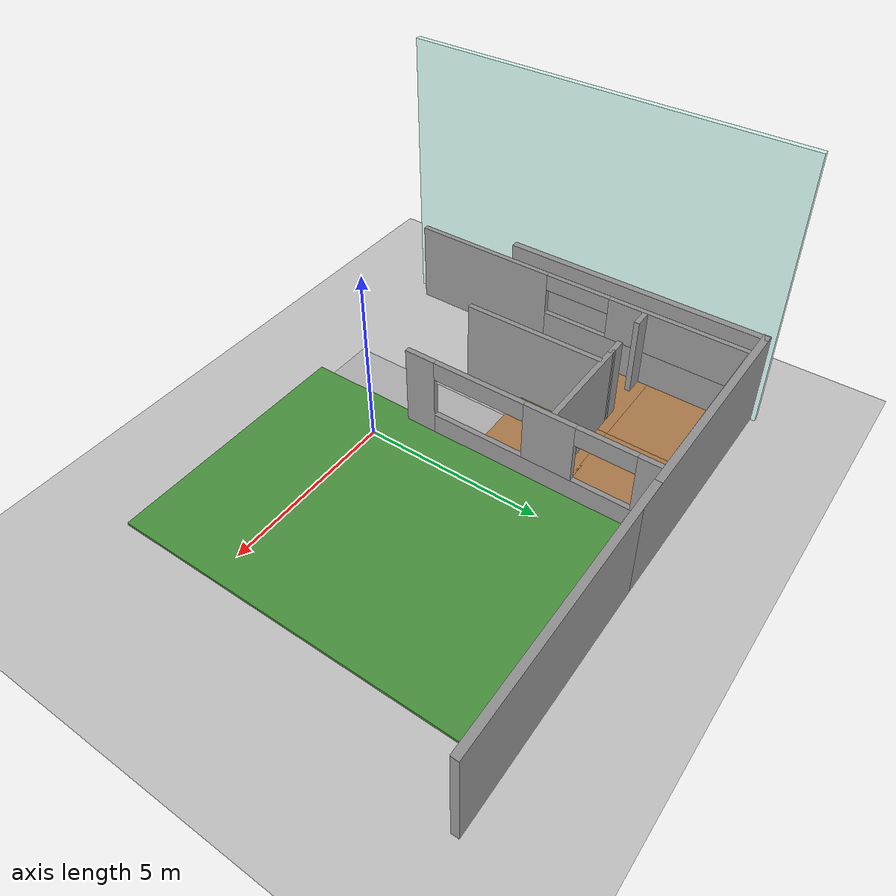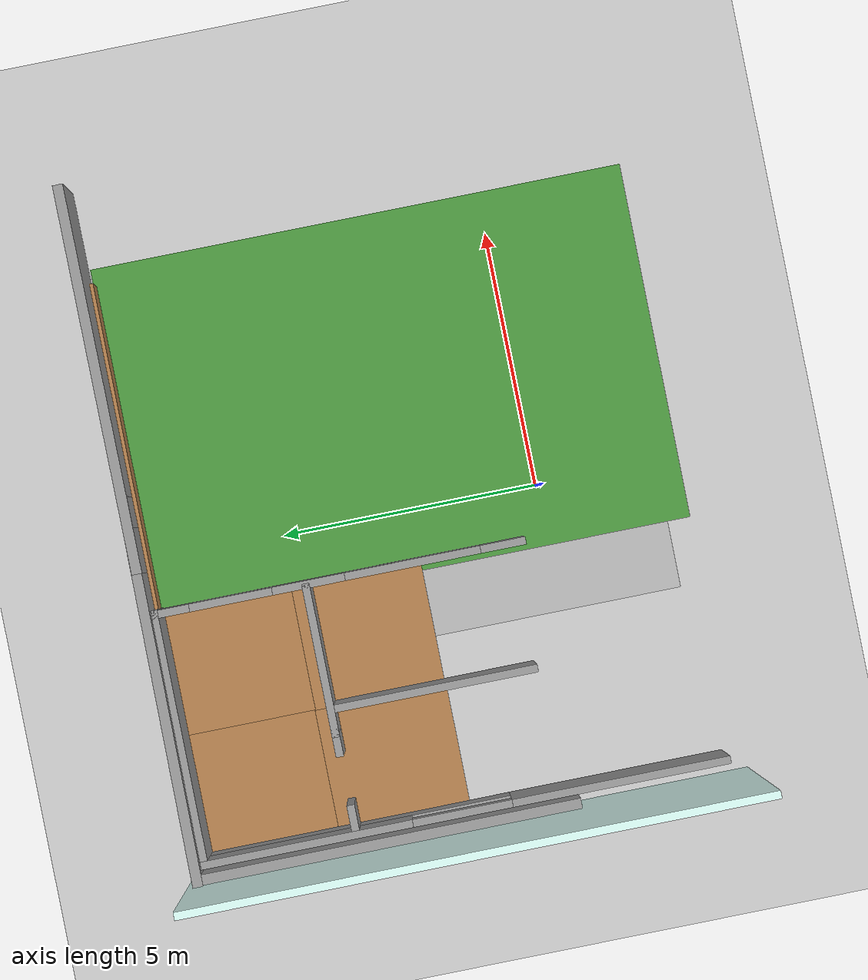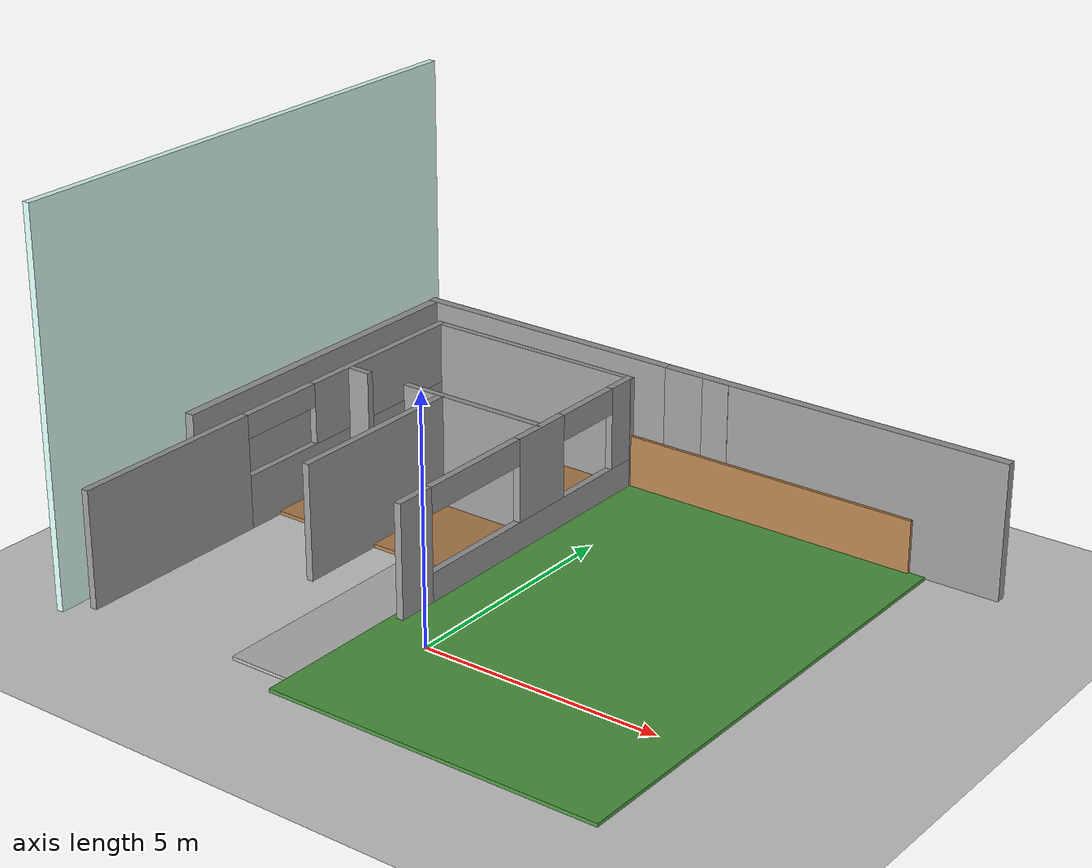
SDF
<sdf version="1.6">
 <world name="default">
  <model name="mud_box">
   <static>1</static>
   <link name="link">
    <collision name="collision"><geometry><box><size>8 10 0.2</size></box></geometry></collision>
    <visual name="visual_1">
     <pose>-2 2.5 0 0 -0 0</pose>
     <cast_shadows>0</cast_shadows>
     <geometry><box><size>4 5 0.2</size></box></geometry>
     <material>
      <script>
       <uri>model://mud_box/materials/scripts</uri>
       <uri>model://mud_box/materials/textures</uri>
       <name>vrc/mud</name>
      </script>
     </material>
    </visual>
    <visual name="visual_2">
     <pose>2 2.5 0 0 -0 0</pose>
     <cast_shadows>0</cast_shadows>
     <geometry><box><size>4 5 0.2</size></box></geometry>
     <material>
      <script>
       <uri>model://mud_box/materials/scripts</uri>
       <uri>model://mud_box/materials/textures</uri>
       <name>vrc/mud</name>
      </script>
     </material>
    </visual>
    <visual name="visual_3">
     <pose>2 -2.5 0 0 -0 0</pose>
     <cast_shadows>0</cast_shadows>
     <geometry><box><size>4 5 0.2</size></box></geometry>
     <material>
      <script>
       <uri>model://mud_box/materials/scripts</uri>
       <uri>model://mud_box/materials/textures</uri>
       <name>vrc/mud</name>
      </script>
     </material>
    </visual>
    <visual name="visual_4">
     <pose>-2 -2.5 0 0 -0 0</pose>
     <cast_shadows>0</cast_shadows>
     <geometry><box><size>4 5 0.2</size></box></geometry>
     <material>
      <script>
       <uri>model://mud_box/materials/scripts</uri>
       <uri>model://mud_box/materials/textures</uri>
       <name>vrc/mud</name>
      </script>
     </material>
    </visual>
   </link>
   <pose>1.51756 2.62532 -0.053989 0 -0 0</pose>
  </model>
  <model name="grey_wall_clone_0_clone">
   <static>1</static>
   <link name="link">
    <pose>0 0 1.4 0 -0 0</pose>
    <collision name="collision"><geometry><box><size>7.5 0.2 2.8</size></box></geometry></collision>
    <visual name="visual">
     <cast_shadows>0</cast_shadows>
     <geometry><box><size>7.5 0.2 2.8</size></box></geometry>
     <material>
      <script>
       <uri>model://grey_wall/materials/scripts</uri>
       <uri>model://grey_wall/materials/textures</uri>
       <name>vrc/grey_wall</name>
      </script>
     </material>
    </visual>
   </link>
   <pose>3.58891 7.79807 -0 0 0 -3.13873</pose>
  </model>
  <model name="grey_wall_clone_0_clone_0">
   <static>1</static>
   <link name="link">
    <pose>0 0 1.4 0 -0 0</pose>
    <collision name="collision"><geometry><box><size>7.5 0.2 2.8</size></box></geometry></collision>
    <visual name="visual">
     <cast_shadows>0</cast_shadows>
     <geometry><box><size>7.5 0.2 2.8</size></box></geometry>
     <material>
      <script>
       <uri>model://grey_wall/materials/scripts</uri>
       <uri>model://grey_wall/materials/textures</uri>
       <name>vrc/grey_wall</name>
      </script>
     </material>
    </visual>
   </link>
   <pose>-2.42988 7.80474 0 0 -0 3.13686</pose>
  </model>
  <model name="grey_wall_clone_0_clone_0_clone_2">
   <static>1</static>
   <link name="link">
    <pose>0 0 1.4 0 -0 0</pose>
    <collision name="collision"><geometry><box><size>7.5 0.2 2.8</size></box></geometry></collision>
    <visual name="visual">
     <cast_shadows>0</cast_shadows>
     <geometry><box><size>7.5 0.2 2.8</size></box></geometry>
     <material>
      <script>
       <uri>model://grey_wall/materials/scripts</uri>
       <uri>model://grey_wall/materials/textures</uri>
       <name>vrc/grey_wall</name>
      </script>
     </material>
    </visual>
   </link>
   <pose>-6.05351 4.16462 0 0 -0 1.57226</pose>
  </model>
  <model name="grass">
   <link name="Wall_4">
    <pose>0 0 0 0 -0 1.5708</pose>
    <inertial>
     <mass>1</mass>
     <inertia><ixx>1</ixx><ixy>0</ixy><ixz>0</ixz><iyy>1</iyy><iyz>0</iyz><izz>1</izz></inertia>
    </inertial>
    <visual name="Wall_4_Visual">
     <pose>0 0 0.25 0 -0 0</pose>
     <geometry><box><size>10.5 7 0.5</size></box></geometry>
     <material>
      <script><uri>file://media/materials/scripts/gazebo.material</uri><name>Gazebo/Grass</name></script>
      <ambient>0.435 0.796 0.675 1</ambient>
      <shader type="vertex"><normal_map>__default__</normal_map></shader>
      <diffuse>0.7 0.7 0.7 1</diffuse>
      <specular>0.01 0.01 0.01 1</specular>
      <emissive>0 0 0 1</emissive>
     </material>
     <meta><layer>0</layer></meta>
    </visual>
    <collision name="collision_0">
     <pose>10.95 6.2 0.5 0 -0 0</pose>
     <geometry><box><size>10.95 6.2 0.5</size></box></geometry>
     <surface>
      <friction>
       <ode><mu>1</mu><mu2>1</mu2><fdir1>0 0 0</fdir1><slip1>0</slip1><slip2>0</slip2></ode>
       <torsional>
        <coefficient>1</coefficient>
        <patch_radius>0</patch_radius>
        <surface_radius>0</surface_radius>
        <use_patch_radius>1</use_patch_radius>
        <ode><slip>0</slip></ode>
       </torsional>
      </friction>
      <bounce><restitution_coefficient>0</restitution_coefficient><threshold>1e+06</threshold></bounce>
      <contact>
       <collide_without_contact>0</collide_without_contact>
       <collide_without_contact_bitmask>1</collide_without_contact_bitmask>
       <collide_bitmask>1</collide_bitmask>
       <ode>
        <soft_cfm>0</soft_cfm>
        <soft_erp>0.2</soft_erp>
        <kp>1e+13</kp>
        <kd>1</kd>
        <max_vel>0.01</max_vel>
        <min_depth>0</min_depth>
       </ode>
       <bullet>
        <split_impulse>1</split_impulse>
        <split_impulse_penetration_threshold>-0.01</split_impulse_penetration_threshold>
        <soft_cfm>0</soft_cfm>
        <soft_erp>0.2</soft_erp>
        <kp>1e+13</kp>
        <kd>1</kd>
       </bullet>
      </contact>
     </surface>
    </collision>
   </link>
   <static>1</static>
   <pose>2.32059 2.42329 -0.447772 0 0 -0.00069</pose>
  </model>
  <model name="world_frame">
   <link name="Wall_136">
    <pose>-18.5517 1.54493 -0.100255 0 -0 1.5708</pose>
    <visual name="Wall_136_Visual_4">
     <pose>-1.43693 0 2.225 0 -0 0</pose>
     <geometry><box><size>2.62457 0.15 0.55</size></box></geometry>
     <material>
      <script><uri>file://media/materials/scripts/gazebo.material</uri><name>Gazebo/Grey</name></script>
      <ambient>1 1 1 1</ambient>
      <shader type="pixel"/>
      <diffuse>0.7 0.7 0.7 1</diffuse>
      <specular>0.01 0.01 0.01 1</specular>
      <emissive>0 0 0 1</emissive>
     </material>
     <meta><layer>0</layer></meta>
    </visual>
    <visual name="Wall_136_Visual_3">
     <pose>3.25362 0 1.625 0 -0 0</pose>
     <geometry><box><size>0.742767 0.15 1.75</size></box></geometry>
     <material>
      <script><uri>file://media/materials/scripts/gazebo.material</uri><name>Gazebo/Grey</name></script>
      <ambient>1 1 1 1</ambient>
      <shader type="pixel"/>
      <diffuse>0.7 0.7 0.7 1</diffuse>
      <specular>0.01 0.01 0.01 1</specular>
      <emissive>0 0 0 1</emissive>
     </material>
     <meta><layer>0</layer></meta>
    </visual>
    <visual name="Wall_136_Visual_5">
     <pose>2.08223 0 2.225 0 -0 0</pose>
     <geometry><box><size>1.6 0.15 0.55</size></box></geometry>
     <material>
      <script><uri>file://media/materials/scripts/gazebo.material</uri><name>Gazebo/Grey</name></script>
      <ambient>1 1 1 1</ambient>
      <shader type="pixel"/>
      <diffuse>0.7 0.7 0.7 1</diffuse>
      <specular>0.01 0.01 0.01 1</specular>
      <emissive>0 0 0 1</emissive>
     </material>
     <meta><layer>0</layer></meta>
    </visual>
    <visual name="Wall_136_Visual_0">
     <pose>-3.1871 0 1.25 0 -0 0</pose>
     <geometry><box><size>0.875792 0.15 2.5</size></box></geometry>
     <material>
      <script><uri>file://media/materials/scripts/gazebo.material</uri><name>Gazebo/Grey</name></script>
      <ambient>1 1 1 1</ambient>
      <shader type="pixel"/>
      <diffuse>0.7 0.7 0.7 1</diffuse>
      <specular>0.01 0.01 0.01 1</specular>
      <emissive>0 0 0 1</emissive>
     </material>
     <meta><layer>0</layer></meta>
    </visual>
    <visual name="Wall_136_Visual_1">
     <pose>0.437896 0 0.375 0 -0 0</pose>
     <geometry><box><size>6.37421 0.15 0.75</size></box></geometry>
     <material>
      <script><uri>file://media/materials/scripts/gazebo.material</uri><name>Gazebo/Grey</name></script>
      <ambient>1 1 1 1</ambient>
      <shader type="pixel"/>
      <diffuse>0.7 0.7 0.7 1</diffuse>
      <specular>0.01 0.01 0.01 1</specular>
      <emissive>0 0 0 1</emissive>
     </material>
     <meta><layer>0</layer></meta>
    </visual>
    <visual name="Wall_136_Visual_2">
     <pose>0.578795 0 1.625 0 -0 0</pose>
     <geometry><box><size>1.40688 0.15 1.75</size></box></geometry>
     <material>
      <script><uri>file://media/materials/scripts/gazebo.material</uri><name>Gazebo/Grey</name></script>
      <ambient>1 1 1 1</ambient>
      <shader type="pixel"/>
      <diffuse>0.7 0.7 0.7 1</diffuse>
      <specular>0.01 0.01 0.01 1</specular>
      <emissive>0 0 0 1</emissive>
     </material>
     <meta><layer>0</layer></meta>
    </visual>
    <collision name="Wall_136_Collision_0">
     <pose>-3.1871 0 1.25 0 -0 0</pose>
     <geometry><box><size>0.875792 0.15 2.5</size></box></geometry>
     <surface>
      <friction>
       <ode><mu>1</mu><mu2>1</mu2><fdir1>0 0 0</fdir1><slip1>0</slip1><slip2>0</slip2></ode>
       <torsional>
        <coefficient>1</coefficient>
        <patch_radius>0</patch_radius>
        <surface_radius>0</surface_radius>
        <use_patch_radius>1</use_patch_radius>
        <ode><slip>0</slip></ode>
       </torsional>
      </friction>
      <bounce><restitution_coefficient>0</restitution_coefficient><threshold>1e+06</threshold></bounce>
      <contact>
       <collide_without_contact>0</collide_without_contact>
       <collide_without_contact_bitmask>1</collide_without_contact_bitmask>
       <collide_bitmask>1</collide_bitmask>
       <ode>
        <soft_cfm>0</soft_cfm>
        <soft_erp>0.2</soft_erp>
        <kp>1e+13</kp>
        <kd>1</kd>
        <max_vel>0.01</max_vel>
        <min_depth>0</min_depth>
       </ode>
       <bullet>
        <split_impulse>1</split_impulse>
        <split_impulse_penetration_threshold>-0.01</split_impulse_penetration_threshold>
        <soft_cfm>0</soft_cfm>
        <soft_erp>0.2</soft_erp>
        <kp>1e+13</kp>
        <kd>1</kd>
       </bullet>
      </contact>
     </surface>
    </collision>
    <collision name="Wall_136_Collision_5">
     <pose>2.08223 0 2.225 0 -0 0</pose>
     <geometry><box><size>1.6 0.15 0.55</size></box></geometry>
     <surface>
      <friction>
       <ode><mu>1</mu><mu2>1</mu2><fdir1>0 0 0</fdir1><slip1>0</slip1><slip2>0</slip2></ode>
       <torsional>
        <coefficient>1</coefficient>
        <patch_radius>0</patch_radius>
        <surface_radius>0</surface_radius>
        <use_patch_radius>1</use_patch_radius>
        <ode><slip>0</slip></ode>
       </torsional>
      </friction>
      <bounce><restitution_coefficient>0</restitution_coefficient><threshold>1e+06</threshold></bounce>
      <contact>
       <collide_without_contact>0</collide_without_contact>
       <collide_without_contact_bitmask>1</collide_without_contact_bitmask>
       <collide_bitmask>1</collide_bitmask>
       <ode>
        <soft_cfm>0</soft_cfm>
        <soft_erp>0.2</soft_erp>
        <kp>1e+13</kp>
        <kd>1</kd>
        <max_vel>0.01</max_vel>
        <min_depth>0</min_depth>
       </ode>
       <bullet>
        <split_impulse>1</split_impulse>
        <split_impulse_penetration_threshold>-0.01</split_impulse_penetration_threshold>
        <soft_cfm>0</soft_cfm>
        <soft_erp>0.2</soft_erp>
        <kp>1e+13</kp>
        <kd>1</kd>
       </bullet>
      </contact>
     </surface>
    </collision>
    <collision name="Wall_136_Collision_1">
     <pose>0.437896 0 0.375 0 -0 0</pose>
     <geometry><box><size>6.37421 0.15 0.75</size></box></geometry>
     <surface>
      <friction>
       <ode><mu>1</mu><mu2>1</mu2><fdir1>0 0 0</fdir1><slip1>0</slip1><slip2>0</slip2></ode>
       <torsional>
        <coefficient>1</coefficient>
        <patch_radius>0</patch_radius>
        <surface_radius>0</surface_radius>
        <use_patch_radius>1</use_patch_radius>
        <ode><slip>0</slip></ode>
       </torsional>
      </friction>
      <bounce><restitution_coefficient>0</restitution_coefficient><threshold>1e+06</threshold></bounce>
      <contact>
       <collide_without_contact>0</collide_without_contact>
       <collide_without_contact_bitmask>1</collide_without_contact_bitmask>
       <collide_bitmask>1</collide_bitmask>
       <ode>
        <soft_cfm>0</soft_cfm>
        <soft_erp>0.2</soft_erp>
        <kp>1e+13</kp>
        <kd>1</kd>
        <max_vel>0.01</max_vel>
        <min_depth>0</min_depth>
       </ode>
       <bullet>
        <split_impulse>1</split_impulse>
        <split_impulse_penetration_threshold>-0.01</split_impulse_penetration_threshold>
        <soft_cfm>0</soft_cfm>
        <soft_erp>0.2</soft_erp>
        <kp>1e+13</kp>
        <kd>1</kd>
       </bullet>
      </contact>
     </surface>
    </collision>
    <collision name="Wall_136_Collision_2">
     <pose>0.578795 0 1.625 0 -0 0</pose>
     <geometry><box><size>1.40688 0.15 1.75</size></box></geometry>
     <surface>
      <friction>
       <ode><mu>1</mu><mu2>1</mu2><fdir1>0 0 0</fdir1><slip1>0</slip1><slip2>0</slip2></ode>
       <torsional>
        <coefficient>1</coefficient>
        <patch_radius>0</patch_radius>
        <surface_radius>0</surface_radius>
        <use_patch_radius>1</use_patch_radius>
        <ode><slip>0</slip></ode>
       </torsional>
      </friction>
      <bounce><restitution_coefficient>0</restitution_coefficient><threshold>1e+06</threshold></bounce>
      <contact>
       <collide_without_contact>0</collide_without_contact>
       <collide_without_contact_bitmask>1</collide_without_contact_bitmask>
       <collide_bitmask>1</collide_bitmask>
       <ode>
        <soft_cfm>0</soft_cfm>
        <soft_erp>0.2</soft_erp>
        <kp>1e+13</kp>
        <kd>1</kd>
        <max_vel>0.01</max_vel>
        <min_depth>0</min_depth>
       </ode>
       <bullet>
        <split_impulse>1</split_impulse>
        <split_impulse_penetration_threshold>-0.01</split_impulse_penetration_threshold>
        <soft_cfm>0</soft_cfm>
        <soft_erp>0.2</soft_erp>
        <kp>1e+13</kp>
        <kd>1</kd>
       </bullet>
      </contact>
     </surface>
    </collision>
    <collision name="Wall_136_Collision_4">
     <pose>-1.43693 0 2.225 0 -0 0</pose>
     <geometry><box><size>2.62457 0.15 0.55</size></box></geometry>
     <surface>
      <friction>
       <ode><mu>1</mu><mu2>1</mu2><fdir1>0 0 0</fdir1><slip1>0</slip1><slip2>0</slip2></ode>
       <torsional>
        <coefficient>1</coefficient>
        <patch_radius>0</patch_radius>
        <surface_radius>0</surface_radius>
        <use_patch_radius>1</use_patch_radius>
        <ode><slip>0</slip></ode>
       </torsional>
      </friction>
      <bounce><restitution_coefficient>0</restitution_coefficient><threshold>1e+06</threshold></bounce>
      <contact>
       <collide_without_contact>0</collide_without_contact>
       <collide_without_contact_bitmask>1</collide_without_contact_bitmask>
       <collide_bitmask>1</collide_bitmask>
       <ode>
        <soft_cfm>0</soft_cfm>
        <soft_erp>0.2</soft_erp>
        <kp>1e+13</kp>
        <kd>1</kd>
        <max_vel>0.01</max_vel>
        <min_depth>0</min_depth>
       </ode>
       <bullet>
        <split_impulse>1</split_impulse>
        <split_impulse_penetration_threshold>-0.01</split_impulse_penetration_threshold>
        <soft_cfm>0</soft_cfm>
        <soft_erp>0.2</soft_erp>
        <kp>1e+13</kp>
        <kd>1</kd>
       </bullet>
      </contact>
     </surface>
    </collision>
    <collision name="Wall_136_Collision_3">
     <pose>3.25362 0 1.625 0 -0 0</pose>
     <geometry><box><size>0.742767 0.15 1.75</size></box></geometry>
     <surface>
      <friction>
       <ode><mu>1</mu><mu2>1</mu2><fdir1>0 0 0</fdir1><slip1>0</slip1><slip2>0</slip2></ode>
       <torsional>
        <coefficient>1</coefficient>
        <patch_radius>0</patch_radius>
        <surface_radius>0</surface_radius>
        <use_patch_radius>1</use_patch_radius>
        <ode><slip>0</slip></ode>
       </torsional>
      </friction>
      <bounce><restitution_coefficient>0</restitution_coefficient><threshold>1e+06</threshold></bounce>
      <contact>
       <collide_without_contact>0</collide_without_contact>
       <collide_without_contact_bitmask>1</collide_without_contact_bitmask>
       <collide_bitmask>1</collide_bitmask>
       <ode>
        <soft_cfm>0</soft_cfm>
        <soft_erp>0.2</soft_erp>
        <kp>1e+13</kp>
        <kd>1</kd>
        <max_vel>0.01</max_vel>
        <min_depth>0</min_depth>
       </ode>
       <bullet>
        <split_impulse>1</split_impulse>
        <split_impulse_penetration_threshold>-0.01</split_impulse_penetration_threshold>
        <soft_cfm>0</soft_cfm>
        <soft_erp>0.2</soft_erp>
        <kp>1e+13</kp>
        <kd>1</kd>
       </bullet>
      </contact>
     </surface>
    </collision>
   </link>
   <link name="Wall_140">
    <pose>-23.3896 0.057 -0.100255 0 -0 1.5708</pose>
    <visual name="Wall_140_Visual_3">
     <pose>0.054585 0 2.25 0 -0 0</pose>
     <geometry><box><size>1.92702 0.15 0.5</size></box></geometry>
     <material>
      <script><uri>file://media/materials/scripts/gazebo.material</uri><name>Gazebo/Grey</name></script>
      <ambient>1 1 1 1</ambient>
      <shader type="pixel"/>
      <diffuse>0.7 0.7 0.7 1</diffuse>
      <specular>0.01 0.01 0.01 1</specular>
      <emissive>0 0 0 1</emissive>
     </material>
     <meta><layer>0</layer></meta>
    </visual>
    <visual name="Wall_140_Visual_2">
     <pose>3.07155 0 1.85 0 -0 0</pose>
     <geometry><box><size>4.1069 0.15 1.3</size></box></geometry>
     <material>
      <script><uri>file://media/materials/scripts/gazebo.material</uri><name>Gazebo/Grey</name></script>
      <ambient>1 1 1 1</ambient>
      <shader type="pixel"/>
      <diffuse>0.7 0.7 0.7 1</diffuse>
      <specular>0.01 0.01 0.01 1</specular>
      <emissive>0 0 0 1</emissive>
     </material>
     <meta><layer>0</layer></meta>
    </visual>
    <visual name="Wall_140_Visual_1">
     <pose>2.10804 0 0.6 0 -0 0</pose>
     <geometry><box><size>6.03393 0.15 1.2</size></box></geometry>
     <material>
      <script><uri>file://media/materials/scripts/gazebo.material</uri><name>Gazebo/Grey</name></script>
      <ambient>1 1 1 1</ambient>
      <shader type="pixel"/>
      <diffuse>0.7 0.7 0.7 1</diffuse>
      <specular>0.01 0.01 0.01 1</specular>
      <emissive>0 0 0 1</emissive>
     </material>
     <meta><layer>0</layer></meta>
    </visual>
    <visual name="Wall_140_Visual_0">
     <pose>-3.01696 0 1.25 0 -0 0</pose>
     <geometry><box><size>4.21607 0.15 2.5</size></box></geometry>
     <material>
      <script><uri>file://media/materials/scripts/gazebo.material</uri><name>Gazebo/Grey</name></script>
      <ambient>1 1 1 1</ambient>
      <shader type="pixel"/>
      <diffuse>0.7 0.7 0.7 1</diffuse>
      <specular>0.01 0.01 0.01 1</specular>
      <emissive>0 0 0 1</emissive>
     </material>
     <meta><layer>0</layer></meta>
    </visual>
    <collision name="Wall_140_Collision_0">
     <pose>-3.01696 0 1.25 0 -0 0</pose>
     <geometry><box><size>4.21607 0.15 2.5</size></box></geometry>
     <surface>
      <friction>
       <ode><mu>1</mu><mu2>1</mu2><fdir1>0 0 0</fdir1><slip1>0</slip1><slip2>0</slip2></ode>
       <torsional>
        <coefficient>1</coefficient>
        <patch_radius>0</patch_radius>
        <surface_radius>0</surface_radius>
        <use_patch_radius>1</use_patch_radius>
        <ode><slip>0</slip></ode>
       </torsional>
      </friction>
      <bounce><restitution_coefficient>0</restitution_coefficient><threshold>1e+06</threshold></bounce>
      <contact>
       <collide_without_contact>0</collide_without_contact>
       <collide_without_contact_bitmask>1</collide_without_contact_bitmask>
       <collide_bitmask>1</collide_bitmask>
       <ode>
        <soft_cfm>0</soft_cfm>
        <soft_erp>0.2</soft_erp>
        <kp>1e+13</kp>
        <kd>1</kd>
        <max_vel>0.01</max_vel>
        <min_depth>0</min_depth>
       </ode>
       <bullet>
        <split_impulse>1</split_impulse>
        <split_impulse_penetration_threshold>-0.01</split_impulse_penetration_threshold>
        <soft_cfm>0</soft_cfm>
        <soft_erp>0.2</soft_erp>
        <kp>1e+13</kp>
        <kd>1</kd>
       </bullet>
      </contact>
     </surface>
    </collision>
    <collision name="Wall_140_Collision_3">
     <pose>0.054585 0 2.25 0 -0 0</pose>
     <geometry><box><size>1.92702 0.15 0.5</size></box></geometry>
     <surface>
      <friction>
       <ode><mu>1</mu><mu2>1</mu2><fdir1>0 0 0</fdir1><slip1>0</slip1><slip2>0</slip2></ode>
       <torsional>
        <coefficient>1</coefficient>
        <patch_radius>0</patch_radius>
        <surface_radius>0</surface_radius>
        <use_patch_radius>1</use_patch_radius>
        <ode><slip>0</slip></ode>
       </torsional>
      </friction>
      <bounce><restitution_coefficient>0</restitution_coefficient><threshold>1e+06</threshold></bounce>
      <contact>
       <collide_without_contact>0</collide_without_contact>
       <collide_without_contact_bitmask>1</collide_without_contact_bitmask>
       <collide_bitmask>1</collide_bitmask>
       <ode>
        <soft_cfm>0</soft_cfm>
        <soft_erp>0.2</soft_erp>
        <kp>1e+13</kp>
        <kd>1</kd>
        <max_vel>0.01</max_vel>
        <min_depth>0</min_depth>
       </ode>
       <bullet>
        <split_impulse>1</split_impulse>
        <split_impulse_penetration_threshold>-0.01</split_impulse_penetration_threshold>
        <soft_cfm>0</soft_cfm>
        <soft_erp>0.2</soft_erp>
        <kp>1e+13</kp>
        <kd>1</kd>
       </bullet>
      </contact>
     </surface>
    </collision>
    <collision name="Wall_140_Collision_1">
     <pose>2.10804 0 0.6 0 -0 0</pose>
     <geometry><box><size>6.03393 0.15 1.2</size></box></geometry>
     <surface>
      <friction>
       <ode><mu>1</mu><mu2>1</mu2><fdir1>0 0 0</fdir1><slip1>0</slip1><slip2>0</slip2></ode>
       <torsional>
        <coefficient>1</coefficient>
        <patch_radius>0</patch_radius>
        <surface_radius>0</surface_radius>
        <use_patch_radius>1</use_patch_radius>
        <ode><slip>0</slip></ode>
       </torsional>
      </friction>
      <bounce><restitution_coefficient>0</restitution_coefficient><threshold>1e+06</threshold></bounce>
      <contact>
       <collide_without_contact>0</collide_without_contact>
       <collide_without_contact_bitmask>1</collide_without_contact_bitmask>
       <collide_bitmask>1</collide_bitmask>
       <ode>
        <soft_cfm>0</soft_cfm>
        <soft_erp>0.2</soft_erp>
        <kp>1e+13</kp>
        <kd>1</kd>
        <max_vel>0.01</max_vel>
        <min_depth>0</min_depth>
       </ode>
       <bullet>
        <split_impulse>1</split_impulse>
        <split_impulse_penetration_threshold>-0.01</split_impulse_penetration_threshold>
        <soft_cfm>0</soft_cfm>
        <soft_erp>0.2</soft_erp>
        <kp>1e+13</kp>
        <kd>1</kd>
       </bullet>
      </contact>
     </surface>
    </collision>
    <collision name="Wall_140_Collision_2">
     <pose>3.07155 0 1.85 0 -0 0</pose>
     <geometry><box><size>4.1069 0.15 1.3</size></box></geometry>
     <surface>
      <friction>
       <ode><mu>1</mu><mu2>1</mu2><fdir1>0 0 0</fdir1><slip1>0</slip1><slip2>0</slip2></ode>
       <torsional>
        <coefficient>1</coefficient>
        <patch_radius>0</patch_radius>
        <surface_radius>0</surface_radius>
        <use_patch_radius>1</use_patch_radius>
        <ode><slip>0</slip></ode>
       </torsional>
      </friction>
      <bounce><restitution_coefficient>0</restitution_coefficient><threshold>1e+06</threshold></bounce>
      <contact>
       <collide_without_contact>0</collide_without_contact>
       <collide_without_contact_bitmask>1</collide_without_contact_bitmask>
       <collide_bitmask>1</collide_bitmask>
       <ode>
        <soft_cfm>0</soft_cfm>
        <soft_erp>0.2</soft_erp>
        <kp>1e+13</kp>
        <kd>1</kd>
        <max_vel>0.01</max_vel>
        <min_depth>0</min_depth>
       </ode>
       <bullet>
        <split_impulse>1</split_impulse>
        <split_impulse_penetration_threshold>-0.01</split_impulse_penetration_threshold>
        <soft_cfm>0</soft_cfm>
        <soft_erp>0.2</soft_erp>
        <kp>1e+13</kp>
        <kd>1</kd>
       </bullet>
      </contact>
     </surface>
    </collision>
   </link>
   <link name="Wall_141">
    <pose>-20.9646 5.107 -0.100255 0 -0 0</pose>
    <visual name="Wall_141_Visual">
     <pose>0 0 1.25 0 -0 0</pose>
     <geometry><box><size>5 0.15 2.5</size></box></geometry>
     <material>
      <script><uri>file://media/materials/scripts/gazebo.material</uri><name>Gazebo/Grey</name></script>
      <ambient>1 1 1 1</ambient>
      <shader type="pixel"/>
      <diffuse>0.7 0.7 0.7 1</diffuse>
      <specular>0.01 0.01 0.01 1</specular>
      <emissive>0 0 0 1</emissive>
     </material>
     <meta><layer>0</layer></meta>
    </visual>
    <collision name="Wall_141_Collision">
     <pose>0 0 1.25 0 -0 0</pose>
     <geometry><box><size>5 0.15 2.5</size></box></geometry>
     <surface>
      <friction>
       <ode><mu>1</mu><mu2>1</mu2><fdir1>0 0 0</fdir1><slip1>0</slip1><slip2>0</slip2></ode>
       <torsional>
        <coefficient>1</coefficient>
        <patch_radius>0</patch_radius>
        <surface_radius>0</surface_radius>
        <use_patch_radius>1</use_patch_radius>
        <ode><slip>0</slip></ode>
       </torsional>
      </friction>
      <bounce><restitution_coefficient>0</restitution_coefficient><threshold>1e+06</threshold></bounce>
      <contact>
       <collide_without_contact>0</collide_without_contact>
       <collide_without_contact_bitmask>1</collide_without_contact_bitmask>
       <collide_bitmask>1</collide_bitmask>
       <ode>
        <soft_cfm>0</soft_cfm>
        <soft_erp>0.2</soft_erp>
        <kp>1e+13</kp>
        <kd>1</kd>
        <max_vel>0.01</max_vel>
        <min_depth>0</min_depth>
       </ode>
       <bullet>
        <split_impulse>1</split_impulse>
        <split_impulse_penetration_threshold>-0.01</split_impulse_penetration_threshold>
        <soft_cfm>0</soft_cfm>
        <soft_erp>0.2</soft_erp>
        <kp>1e+13</kp>
        <kd>1</kd>
       </bullet>
      </contact>
     </surface>
    </collision>
   </link>
   <link name="Wall_164">
    <pose>-20.0168 2.18049 -0.100255 0 0 -8.4e-05</pose>
    <visual name="Wall_164_Visual">
     <pose>0 0 1.25 0 -0 0</pose>
     <geometry><box><size>2.97154 0.15 2.5</size></box></geometry>
     <material>
      <script><uri>file://media/materials/scripts/gazebo.material</uri><name>Gazebo/Grey</name></script>
      <ambient>1 1 1 1</ambient>
      <shader type="pixel"/>
      <diffuse>0.7 0.7 0.7 1</diffuse>
      <specular>0.01 0.01 0.01 1</specular>
      <emissive>0 0 0 1</emissive>
     </material>
     <meta><layer>0</layer></meta>
    </visual>
    <collision name="Wall_164_Collision">
     <pose>0 0 1.25 0 -0 0</pose>
     <geometry><box><size>2.97154 0.15 2.5</size></box></geometry>
     <surface>
      <friction>
       <ode><mu>1</mu><mu2>1</mu2><fdir1>0 0 0</fdir1><slip1>0</slip1><slip2>0</slip2></ode>
       <torsional>
        <coefficient>1</coefficient>
        <patch_radius>0</patch_radius>
        <surface_radius>0</surface_radius>
        <use_patch_radius>1</use_patch_radius>
        <ode><slip>0</slip></ode>
       </torsional>
      </friction>
      <bounce><restitution_coefficient>0</restitution_coefficient><threshold>1e+06</threshold></bounce>
      <contact>
       <collide_without_contact>0</collide_without_contact>
       <collide_without_contact_bitmask>1</collide_without_contact_bitmask>
       <collide_bitmask>1</collide_bitmask>
       <ode>
        <soft_cfm>0</soft_cfm>
        <soft_erp>0.2</soft_erp>
        <kp>1e+13</kp>
        <kd>1</kd>
        <max_vel>0.01</max_vel>
        <min_depth>0</min_depth>
       </ode>
       <bullet>
        <split_impulse>1</split_impulse>
        <split_impulse_penetration_threshold>-0.01</split_impulse_penetration_threshold>
        <soft_cfm>0</soft_cfm>
        <soft_erp>0.2</soft_erp>
        <kp>1e+13</kp>
        <kd>1</kd>
       </bullet>
      </contact>
     </surface>
    </collision>
   </link>
   <link name="Wall_178">
    <pose>-20.9677 0.173458 -0.100255 0 0 -1.5708</pose>
    <visual name="Wall_178_Visual">
     <pose>0 0 1.25 0 -0 0</pose>
     <geometry><box><size>4 0.15 2.5</size></box></geometry>
     <material>
      <script><uri>file://media/materials/scripts/gazebo.material</uri><name>Gazebo/Grey</name></script>
      <ambient>1 1 1 1</ambient>
      <shader type="pixel"/>
      <diffuse>0.7 0.7 0.7 1</diffuse>
      <specular>0.01 0.01 0.01 1</specular>
      <emissive>0 0 0 1</emissive>
     </material>
     <meta><layer>0</layer></meta>
    </visual>
    <collision name="Wall_178_Collision">
     <pose>0 0 1.25 0 -0 0</pose>
     <geometry><box><size>4 0.15 2.5</size></box></geometry>
     <surface>
      <friction>
       <ode><mu>1</mu><mu2>1</mu2><fdir1>0 0 0</fdir1><slip1>0</slip1><slip2>0</slip2></ode>
       <torsional>
        <coefficient>1</coefficient>
        <patch_radius>0</patch_radius>
        <surface_radius>0</surface_radius>
        <use_patch_radius>1</use_patch_radius>
        <ode><slip>0</slip></ode>
       </torsional>
      </friction>
      <bounce><restitution_coefficient>0</restitution_coefficient><threshold>1e+06</threshold></bounce>
      <contact>
       <collide_without_contact>0</collide_without_contact>
       <collide_without_contact_bitmask>1</collide_without_contact_bitmask>
       <collide_bitmask>1</collide_bitmask>
       <ode>
        <soft_cfm>0</soft_cfm>
        <soft_erp>0.2</soft_erp>
        <kp>1e+13</kp>
        <kd>1</kd>
        <max_vel>0.01</max_vel>
        <min_depth>0</min_depth>
       </ode>
       <bullet>
        <split_impulse>1</split_impulse>
        <split_impulse_penetration_threshold>-0.01</split_impulse_penetration_threshold>
        <soft_cfm>0</soft_cfm>
        <soft_erp>0.2</soft_erp>
        <kp>1e+13</kp>
        <kd>1</kd>
       </bullet>
      </contact>
     </surface>
    </collision>
   </link>
   <link name="Wall_180">
    <pose>-21.6168 2.18049 -0.100255 0 0 -3.14097</pose>
    <visual name="Wall_180_Visual">
     <pose>0 0 1.25 0 -0 0</pose>
     <geometry><box><size>0.528518 0.15 2.5</size></box></geometry>
     <material>
      <script><uri>file://media/materials/scripts/gazebo.material</uri><name>Gazebo/Grey</name></script>
      <ambient>1 1 1 1</ambient>
      <shader type="pixel"/>
      <diffuse>0.7 0.7 0.7 1</diffuse>
      <specular>0.01 0.01 0.01 1</specular>
      <emissive>0 0 0 1</emissive>
     </material>
     <meta><layer>0</layer></meta>
    </visual>
    <collision name="Wall_180_Collision">
     <pose>0 0 1.25 0 -0 0</pose>
     <geometry><box><size>0.528518 0.15 2.5</size></box></geometry>
     <surface>
      <friction>
       <ode><mu>1</mu><mu2>1</mu2><fdir1>0 0 0</fdir1><slip1>0</slip1><slip2>0</slip2></ode>
       <torsional>
        <coefficient>1</coefficient>
        <patch_radius>0</patch_radius>
        <surface_radius>0</surface_radius>
        <use_patch_radius>1</use_patch_radius>
        <ode><slip>0</slip></ode>
       </torsional>
      </friction>
      <bounce><restitution_coefficient>0</restitution_coefficient><threshold>1e+06</threshold></bounce>
      <contact>
       <collide_without_contact>0</collide_without_contact>
       <collide_without_contact_bitmask>1</collide_without_contact_bitmask>
       <collide_bitmask>1</collide_bitmask>
       <ode>
        <soft_cfm>0</soft_cfm>
        <soft_erp>0.2</soft_erp>
        <kp>1e+13</kp>
        <kd>1</kd>
        <max_vel>0.01</max_vel>
        <min_depth>0</min_depth>
       </ode>
       <bullet>
        <split_impulse>1</split_impulse>
        <split_impulse_penetration_threshold>-0.01</split_impulse_penetration_threshold>
        <soft_cfm>0</soft_cfm>
        <soft_erp>0.2</soft_erp>
        <kp>1e+13</kp>
        <kd>1</kd>
       </bullet>
      </contact>
     </surface>
    </collision>
   </link>
   <link name="Wall_182">
    <pose>-23.0659 2.16735 -0.100255 0 -0 0</pose>
    <visual name="Wall_182_Visual">
     <pose>0 0 1.25 0 -0 0</pose>
     <geometry><box><size>0.5 0.15 2.5</size></box></geometry>
     <material>
      <script><uri>file://media/materials/scripts/gazebo.material</uri><name>Gazebo/Grey</name></script>
      <ambient>1 1 1 1</ambient>
      <shader type="pixel"/>
      <diffuse>0.7 0.7 0.7 1</diffuse>
      <specular>0.01 0.01 0.01 1</specular>
      <emissive>0 0 0 1</emissive>
     </material>
     <meta><layer>0</layer></meta>
    </visual>
    <collision name="Wall_182_Collision">
     <pose>0 0 1.25 0 -0 0</pose>
     <geometry><box><size>0.5 0.15 2.5</size></box></geometry>
     <surface>
      <friction>
       <ode><mu>1</mu><mu2>1</mu2><fdir1>0 0 0</fdir1><slip1>0</slip1><slip2>0</slip2></ode>
       <torsional>
        <coefficient>1</coefficient>
        <patch_radius>0</patch_radius>
        <surface_radius>0</surface_radius>
        <use_patch_radius>1</use_patch_radius>
        <ode><slip>0</slip></ode>
       </torsional>
      </friction>
      <bounce><restitution_coefficient>0</restitution_coefficient><threshold>1e+06</threshold></bounce>
      <contact>
       <collide_without_contact>0</collide_without_contact>
       <collide_without_contact_bitmask>1</collide_without_contact_bitmask>
       <collide_bitmask>1</collide_bitmask>
       <ode>
        <soft_cfm>0</soft_cfm>
        <soft_erp>0.2</soft_erp>
        <kp>1e+13</kp>
        <kd>1</kd>
        <max_vel>0.01</max_vel>
        <min_depth>0</min_depth>
       </ode>
       <bullet>
        <split_impulse>1</split_impulse>
        <split_impulse_penetration_threshold>-0.01</split_impulse_penetration_threshold>
        <soft_cfm>0</soft_cfm>
        <soft_erp>0.2</soft_erp>
        <kp>1e+13</kp>
        <kd>1</kd>
       </bullet>
      </contact>
     </surface>
    </collision>
   </link>
   <link name="Wall_209">
    <pose>-23.8206 0 -0.100255 0 0 -1.5708</pose>
    <visual name="Wall_209_Visual">
     <pose>0 0 4 0 -0 0</pose>
     <geometry><box><size>11 0.15 8</size></box></geometry>
     <material>
      <script><uri>file://media/materials/scripts/gazebo.material</uri><name>Gazebo/Grey</name></script>
      <ambient>0.866667 1 0.972549 1</ambient>
      <shader type="pixel"/>
      <diffuse>0.7 0.7 0.7 1</diffuse>
      <specular>0.01 0.01 0.01 1</specular>
      <emissive>0 0 0 1</emissive>
     </material>
     <meta><layer>0</layer></meta>
    </visual>
    <collision name="Wall_209_Collision">
     <pose>0 0 4 0 -0 0</pose>
     <geometry><box><size>11 0.15 8</size></box></geometry>
     <surface>
      <friction>
       <ode><mu>1</mu><mu2>1</mu2><fdir1>0 0 0</fdir1><slip1>0</slip1><slip2>0</slip2></ode>
       <torsional>
        <coefficient>1</coefficient>
        <patch_radius>0</patch_radius>
        <surface_radius>0</surface_radius>
        <use_patch_radius>1</use_patch_radius>
        <ode><slip>0</slip></ode>
       </torsional>
      </friction>
      <bounce><restitution_coefficient>0</restitution_coefficient><threshold>1e+06</threshold></bounce>
      <contact>
       <collide_without_contact>0</collide_without_contact>
       <collide_without_contact_bitmask>1</collide_without_contact_bitmask>
       <collide_bitmask>1</collide_bitmask>
       <ode>
        <soft_cfm>0</soft_cfm>
        <soft_erp>0.2</soft_erp>
        <kp>1e+13</kp>
        <kd>1</kd>
        <max_vel>0.01</max_vel>
        <min_depth>0</min_depth>
       </ode>
       <bullet>
        <split_impulse>1</split_impulse>
        <split_impulse_penetration_threshold>-0.01</split_impulse_penetration_threshold>
        <soft_cfm>0</soft_cfm>
        <soft_erp>0.2</soft_erp>
        <kp>1e+13</kp>
        <kd>1</kd>
       </bullet>
      </contact>
     </surface>
    </collision>
   </link>
   <link name="Wall_225">
    <pose>-22.2466 3.84919 -0.100255 0 -0 1.5708</pose>
    <visual name="Wall_225_Visual">
     <pose>0 0 0.0775 0 -0 0</pose>
     <geometry><box><size>2.625 2.5 0.155</size></box></geometry>
     <material>
      <script><uri>file://media/materials/scripts/gazebo.material</uri><name>Gazebo/Wood</name></script>
      <ambient>1 1 1 1</ambient>
      <shader type="pixel"/>
      <diffuse>1 1 1 1</diffuse>
      <specular>0.2 0.2 0.2 1</specular>
      <emissive>0 0 0 1</emissive>
     </material>
     <meta><layer>0</layer></meta>
    </visual>
    <collision name="Wall_225_Collision">
     <pose>0 0 0.0775 0 -0 0</pose>
     <geometry><box><size>2.625 2.5 0.155</size></box></geometry>
     <surface>
      <friction>
       <ode><mu>1</mu><mu2>1</mu2><fdir1>0 0 0</fdir1><slip1>0</slip1><slip2>0</slip2></ode>
       <torsional>
        <coefficient>1</coefficient>
        <patch_radius>0</patch_radius>
        <surface_radius>0</surface_radius>
        <use_patch_radius>1</use_patch_radius>
        <ode><slip>0</slip></ode>
       </torsional>
      </friction>
      <bounce><restitution_coefficient>0</restitution_coefficient><threshold>1e+06</threshold></bounce>
      <contact>
       <collide_without_contact>0</collide_without_contact>
       <collide_without_contact_bitmask>1</collide_without_contact_bitmask>
       <collide_bitmask>1</collide_bitmask>
       <ode>
        <soft_cfm>0</soft_cfm>
        <soft_erp>0.2</soft_erp>
        <kp>1e+13</kp>
        <kd>1</kd>
        <max_vel>0.01</max_vel>
        <min_depth>0</min_depth>
       </ode>
       <bullet>
        <split_impulse>1</split_impulse>
        <split_impulse_penetration_threshold>-0.01</split_impulse_penetration_threshold>
        <soft_cfm>0</soft_cfm>
        <soft_erp>0.2</soft_erp>
        <kp>1e+13</kp>
        <kd>1</kd>
       </bullet>
      </contact>
     </surface>
    </collision>
   </link>
   <link name="Wall_227">
    <pose>-19.7561 3.83536 -0.100255 0 0 -1.5708</pose>
    <visual name="Wall_227_Visual">
     <pose>0 0 0.0775 0 -0 0</pose>
     <geometry><box><size>2.625 2.5 0.155</size></box></geometry>
     <material>
      <script><uri>file://media/materials/scripts/gazebo.material</uri><name>Gazebo/Wood</name></script>
      <ambient>1 1 1 1</ambient>
      <shader type="pixel"/>
      <diffuse>1 1 1 1</diffuse>
      <specular>0.2 0.2 0.2 1</specular>
      <emissive>0 0 0 1</emissive>
     </material>
     <meta><layer>0</layer></meta>
    </visual>
    <collision name="Wall_227_Collision">
     <pose>0 0 0.0775 0 -0 0</pose>
     <geometry><box><size>2.625 2.5 0.155</size></box></geometry>
     <surface>
      <friction>
       <ode><mu>1</mu><mu2>1</mu2><fdir1>0 0 0</fdir1><slip1>0</slip1><slip2>0</slip2></ode>
       <torsional>
        <coefficient>1</coefficient>
        <patch_radius>0</patch_radius>
        <surface_radius>0</surface_radius>
        <use_patch_radius>1</use_patch_radius>
        <ode><slip>0</slip></ode>
       </torsional>
      </friction>
      <bounce><restitution_coefficient>0</restitution_coefficient><threshold>1e+06</threshold></bounce>
      <contact>
       <collide_without_contact>0</collide_without_contact>
       <collide_without_contact_bitmask>1</collide_without_contact_bitmask>
       <collide_bitmask>1</collide_bitmask>
       <ode>
        <soft_cfm>0</soft_cfm>
        <soft_erp>0.2</soft_erp>
        <kp>1e+13</kp>
        <kd>1</kd>
        <max_vel>0.01</max_vel>
        <min_depth>0</min_depth>
       </ode>
       <bullet>
        <split_impulse>1</split_impulse>
        <split_impulse_penetration_threshold>-0.01</split_impulse_penetration_threshold>
        <soft_cfm>0</soft_cfm>
        <soft_erp>0.2</soft_erp>
        <kp>1e+13</kp>
        <kd>1</kd>
       </bullet>
      </contact>
     </surface>
    </collision>
   </link>
   <link name="Wall_231">
    <pose>-19.7567 1.26088 -0.100255 0 0 -1.5708</pose>
    <visual name="Wall_231_Visual">
     <pose>0 0 0.0775 0 -0 0</pose>
     <geometry><box><size>2.625 2.5 0.155</size></box></geometry>
     <material>
      <script><uri>file://media/materials/scripts/gazebo.material</uri><name>Gazebo/Wood</name></script>
      <ambient>1 1 1 1</ambient>
      <shader type="pixel"/>
      <diffuse>1 1 1 1</diffuse>
      <specular>0.2 0.2 0.2 1</specular>
      <emissive>0 0 0 1</emissive>
     </material>
     <meta><layer>0</layer></meta>
    </visual>
    <collision name="Wall_231_Collision">
     <pose>0 0 0.0775 0 -0 0</pose>
     <geometry><box><size>2.625 2.5 0.155</size></box></geometry>
     <surface>
      <friction>
       <ode><mu>1</mu><mu2>1</mu2><fdir1>0 0 0</fdir1><slip1>0</slip1><slip2>0</slip2></ode>
       <torsional>
        <coefficient>1</coefficient>
        <patch_radius>0</patch_radius>
        <surface_radius>0</surface_radius>
        <use_patch_radius>1</use_patch_radius>
        <ode><slip>0</slip></ode>
       </torsional>
      </friction>
      <bounce><restitution_coefficient>0</restitution_coefficient><threshold>1e+06</threshold></bounce>
      <contact>
       <collide_without_contact>0</collide_without_contact>
       <collide_without_contact_bitmask>1</collide_without_contact_bitmask>
       <collide_bitmask>1</collide_bitmask>
       <ode>
        <soft_cfm>0</soft_cfm>
        <soft_erp>0.2</soft_erp>
        <kp>1e+13</kp>
        <kd>1</kd>
        <max_vel>0.01</max_vel>
        <min_depth>0</min_depth>
       </ode>
       <bullet>
        <split_impulse>1</split_impulse>
        <split_impulse_penetration_threshold>-0.01</split_impulse_penetration_threshold>
        <soft_cfm>0</soft_cfm>
        <soft_erp>0.2</soft_erp>
        <kp>1e+13</kp>
        <kd>1</kd>
       </bullet>
      </contact>
     </surface>
    </collision>
   </link>
   <link name="Wall_235">
    <pose>-22.2519 1.24308 -0.100255 0 0 -1.5708</pose>
    <visual name="Wall_235_Visual">
     <pose>0 0 0.0775 0 -0 0</pose>
     <geometry><box><size>2.625 2.5 0.155</size></box></geometry>
     <material>
      <script><uri>file://media/materials/scripts/gazebo.material</uri><name>Gazebo/Wood</name></script>
      <ambient>1 1 1 1</ambient>
      <shader type="pixel"/>
      <diffuse>1 1 1 1</diffuse>
      <specular>0.2 0.2 0.2 1</specular>
      <emissive>0 0 0 1</emissive>
     </material>
     <meta><layer>0</layer></meta>
    </visual>
    <collision name="Wall_235_Collision">
     <pose>0 0 0.0775 0 -0 0</pose>
     <geometry><box><size>2.625 2.5 0.155</size></box></geometry>
     <surface>
      <friction>
       <ode><mu>1</mu><mu2>1</mu2><fdir1>0 0 0</fdir1><slip1>0</slip1><slip2>0</slip2></ode>
       <torsional>
        <coefficient>1</coefficient>
        <patch_radius>0</patch_radius>
        <surface_radius>0</surface_radius>
        <use_patch_radius>1</use_patch_radius>
        <ode><slip>0</slip></ode>
       </torsional>
      </friction>
      <bounce><restitution_coefficient>0</restitution_coefficient><threshold>1e+06</threshold></bounce>
      <contact>
       <collide_without_contact>0</collide_without_contact>
       <collide_without_contact_bitmask>1</collide_without_contact_bitmask>
       <collide_bitmask>1</collide_bitmask>
       <ode>
        <soft_cfm>0</soft_cfm>
        <soft_erp>0.2</soft_erp>
        <kp>1e+13</kp>
        <kd>1</kd>
        <max_vel>0.01</max_vel>
        <min_depth>0</min_depth>
       </ode>
       <bullet>
        <split_impulse>1</split_impulse>
        <split_impulse_penetration_threshold>-0.01</split_impulse_penetration_threshold>
        <soft_cfm>0</soft_cfm>
        <soft_erp>0.2</soft_erp>
        <kp>1e+13</kp>
        <kd>1</kd>
       </bullet>
      </contact>
     </surface>
    </collision>
   </link>
   <link name="Wall_90">
    <pose>-15.2896 5.107 -0.100255 0 -0 0</pose>
    <visual name="Wall_90_Visual">
     <pose>0 0 0.625 0 -0 0</pose>
     <geometry><box><size>6.42 0.07 1.25</size></box></geometry>
     <material>
      <script><uri>file://media/materials/scripts/gazebo.material</uri><name>Gazebo/Wood</name></script>
      <ambient>1 1 1 1</ambient>
      <shader type="pixel"/>
      <diffuse>1 1 1 1</diffuse>
      <specular>0.2 0.2 0.2 1</specular>
      <emissive>0 0 0 1</emissive>
     </material>
     <meta><layer>0</layer></meta>
    </visual>
    <collision name="Wall_90_Collision">
     <pose>0 0 0.625 0 -0 0</pose>
     <geometry><box><size>6.42 0.07 1.25</size></box></geometry>
     <surface>
      <friction>
       <ode><mu>1</mu><mu2>1</mu2><fdir1>0 0 0</fdir1><slip1>0</slip1><slip2>0</slip2></ode>
       <torsional>
        <coefficient>1</coefficient>
        <patch_radius>0</patch_radius>
        <surface_radius>0</surface_radius>
        <use_patch_radius>1</use_patch_radius>
        <ode><slip>0</slip></ode>
       </torsional>
      </friction>
      <bounce><restitution_coefficient>0</restitution_coefficient><threshold>1e+06</threshold></bounce>
      <contact>
       <collide_without_contact>0</collide_without_contact>
       <collide_without_contact_bitmask>1</collide_without_contact_bitmask>
       <collide_bitmask>1</collide_bitmask>
       <ode>
        <soft_cfm>0</soft_cfm>
        <soft_erp>0.2</soft_erp>
        <kp>1e+13</kp>
        <kd>1</kd>
        <max_vel>0.01</max_vel>
        <min_depth>0</min_depth>
       </ode>
       <bullet>
        <split_impulse>1</split_impulse>
        <split_impulse_penetration_threshold>-0.01</split_impulse_penetration_threshold>
        <soft_cfm>0</soft_cfm>
        <soft_erp>0.2</soft_erp>
        <kp>1e+13</kp>
        <kd>1</kd>
       </bullet>
      </contact>
     </surface>
    </collision>
   </link>
   <static>1</static>
   <pose>17.567 2.53985 0 0 -0 0</pose>
  </model>
  <model name="ground_plane">
   <static>1</static>
   <link name="link">
    <collision name="collision">
     <geometry><plane><normal>0 0 1</normal><size>100 100</size></plane></geometry>
     <surface><friction><ode><mu>100</mu><mu2>50</mu2></ode></friction></surface>
    </collision>
    <visual name="visual">
     <cast_shadows>0</cast_shadows>
     <geometry><plane><normal>0 0 1</normal><size>100 100</size></plane></geometry>
     <material>
      <script><uri>file://media/materials/scripts/gazebo.material</uri><name>Gazebo/Grey</name></script>
     </material>
    </visual>
   </link>
   <pose>0.761598 -6.88477 0 0 -0 0</pose>
  </model>
 </world>
</sdf>
